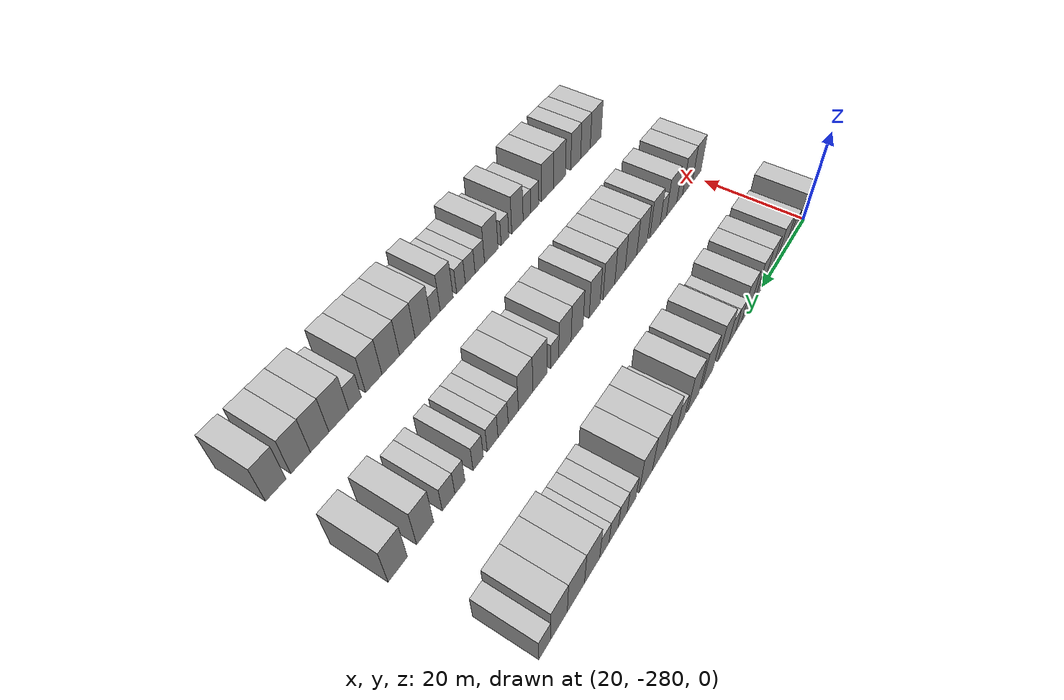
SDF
<sdf version="1.6">
 <world name="default">
  <model name="building_22">
   <static>1</static>
   <pose>25.0000 -278.3851 0 0.000000 0.000000 0.000000</pose>
   <link name="link">
    <pose>0 0 4.50 0 0 0</pose>
    <collision name="collision"><geometry><box><size>10.0000 4.3049 9.0000</size></box></geometry></collision>
    <visual name="visual">
     <cast_shadows>0</cast_shadows>
     <geometry><box><size>10.0000 4.3049 9.0000</size></box></geometry>
     <material>
      <script>
       <uri>model://HANNAS_wall/materials/scripts</uri>
       <uri>model://HANNAS_wall/materials/textures</uri>
       <name>vrc/HANNAS_wall</name>
      </script>
     </material>
    </visual>
   </link>
  </model>
  <model name="building_23">
   <static>1</static>
   <pose>25.0000 -273.7490 0 0.000000 0.000000 0.000000</pose>
   <link name="link">
    <pose>0 0 3.00 0 0 0</pose>
    <collision name="collision"><geometry><box><size>10.0000 2.9674 6.0000</size></box></geometry></collision>
    <visual name="visual">
     <cast_shadows>0</cast_shadows>
     <geometry><box><size>10.0000 2.9674 6.0000</size></box></geometry>
     <material>
      <script>
       <uri>model://HANNAS_wall/materials/scripts</uri>
       <uri>model://HANNAS_wall/materials/textures</uri>
       <name>vrc/HANNAS_wall</name>
      </script>
     </material>
    </visual>
   </link>
  </model>
  <model name="building_24">
   <static>1</static>
   <pose>25.0000 -268.0605 0 0.000000 0.000000 0.000000</pose>
   <link name="link">
    <pose>0 0 4.50 0 0 0</pose>
    <collision name="collision"><geometry><box><size>10.0000 4.4095 9.0000</size></box></geometry></collision>
    <visual name="visual">
     <cast_shadows>0</cast_shadows>
     <geometry><box><size>10.0000 4.4095 9.0000</size></box></geometry>
     <material>
      <script>
       <uri>model://HANNAS_wall/materials/scripts</uri>
       <uri>model://HANNAS_wall/materials/textures</uri>
       <name>vrc/HANNAS_wall</name>
      </script>
     </material>
    </visual>
   </link>
  </model>
  <model name="building_25">
   <static>1</static>
   <pose>25.0000 -262.0357 0 0.000000 0.000000 0.000000</pose>
   <link name="link">
    <pose>0 0 4.50 0 0 0</pose>
    <collision name="collision"><geometry><box><size>10.0000 3.6402 9.0000</size></box></geometry></collision>
    <visual name="visual">
     <cast_shadows>0</cast_shadows>
     <geometry><box><size>10.0000 3.6402 9.0000</size></box></geometry>
     <material>
      <script>
       <uri>model://HANNAS_wall/materials/scripts</uri>
       <uri>model://HANNAS_wall/materials/textures</uri>
       <name>vrc/HANNAS_wall</name>
      </script>
     </material>
    </visual>
   </link>
  </model>
  <model name="building_26">
   <static>1</static>
   <pose>25.0000 -258.3685 0 0.000000 0.000000 0.000000</pose>
   <link name="link">
    <pose>0 0 4.50 0 0 0</pose>
    <collision name="collision"><geometry><box><size>10.0000 3.6942 9.0000</size></box></geometry></collision>
    <visual name="visual">
     <cast_shadows>0</cast_shadows>
     <geometry><box><size>10.0000 3.6942 9.0000</size></box></geometry>
     <material>
      <script>
       <uri>model://HANNAS_wall/materials/scripts</uri>
       <uri>model://HANNAS_wall/materials/textures</uri>
       <name>vrc/HANNAS_wall</name>
      </script>
     </material>
    </visual>
   </link>
  </model>
  <model name="building_27">
   <static>1</static>
   <pose>25.0000 -252.5782 0 0.000000 0.000000 0.000000</pose>
   <link name="link">
    <pose>0 0 4.50 0 0 0</pose>
    <collision name="collision"><geometry><box><size>10.0000 3.8863 9.0000</size></box></geometry></collision>
    <visual name="visual">
     <cast_shadows>0</cast_shadows>
     <geometry><box><size>10.0000 3.8863 9.0000</size></box></geometry>
     <material>
      <script>
       <uri>model://HANNAS_wall/materials/scripts</uri>
       <uri>model://HANNAS_wall/materials/textures</uri>
       <name>vrc/HANNAS_wall</name>
      </script>
     </material>
    </visual>
   </link>
  </model>
  <model name="building_28">
   <static>1</static>
   <pose>25.0000 -249.3838 0 0.000000 0.000000 0.000000</pose>
   <link name="link">
    <pose>0 0 3.00 0 0 0</pose>
    <collision name="collision"><geometry><box><size>10.0000 2.5026 6.0000</size></box></geometry></collision>
    <visual name="visual">
     <cast_shadows>0</cast_shadows>
     <geometry><box><size>10.0000 2.5026 6.0000</size></box></geometry>
     <material>
      <script>
       <uri>model://HANNAS_wall/materials/scripts</uri>
       <uri>model://HANNAS_wall/materials/textures</uri>
       <name>vrc/HANNAS_wall</name>
      </script>
     </material>
    </visual>
   </link>
  </model>
  <model name="building_29">
   <static>1</static>
   <pose>25.0000 -246.7000 0 0.000000 0.000000 0.000000</pose>
   <link name="link">
    <pose>0 0 3.00 0 0 0</pose>
    <collision name="collision"><geometry><box><size>10.0000 2.8650 6.0000</size></box></geometry></collision>
    <visual name="visual">
     <cast_shadows>0</cast_shadows>
     <geometry><box><size>10.0000 2.8650 6.0000</size></box></geometry>
     <material>
      <script>
       <uri>model://HANNAS_wall/materials/scripts</uri>
       <uri>model://HANNAS_wall/materials/textures</uri>
       <name>vrc/HANNAS_wall</name>
      </script>
     </material>
    </visual>
   </link>
  </model>
  <model name="building_30">
   <static>1</static>
   <pose>25.0000 -243.2070 0 0.000000 0.000000 0.000000</pose>
   <link name="link">
    <pose>0 0 4.50 0 0 0</pose>
    <collision name="collision"><geometry><box><size>10.0000 4.1211 9.0000</size></box></geometry></collision>
    <visual name="visual">
     <cast_shadows>0</cast_shadows>
     <geometry><box><size>10.0000 4.1211 9.0000</size></box></geometry>
     <material>
      <script>
       <uri>model://HANNAS_wall/materials/scripts</uri>
       <uri>model://HANNAS_wall/materials/textures</uri>
       <name>vrc/HANNAS_wall</name>
      </script>
     </material>
    </visual>
   </link>
  </model>
  <model name="building_31">
   <static>1</static>
   <pose>25.0000 -237.0426 0 0.000000 0.000000 0.000000</pose>
   <link name="link">
    <pose>0 0 4.50 0 0 0</pose>
    <collision name="collision"><geometry><box><size>10.0000 4.2076 9.0000</size></box></geometry></collision>
    <visual name="visual">
     <cast_shadows>0</cast_shadows>
     <geometry><box><size>10.0000 4.2076 9.0000</size></box></geometry>
     <material>
      <script>
       <uri>model://HANNAS_wall/materials/scripts</uri>
       <uri>model://HANNAS_wall/materials/textures</uri>
       <name>vrc/HANNAS_wall</name>
      </script>
     </material>
    </visual>
   </link>
  </model>
  <model name="building_32">
   <static>1</static>
   <pose>25.0000 -231.9022 0 0.000000 0.000000 0.000000</pose>
   <link name="link">
    <pose>0 0 4.50 0 0 0</pose>
    <collision name="collision"><geometry><box><size>10.0000 4.0731 9.0000</size></box></geometry></collision>
    <visual name="visual">
     <cast_shadows>0</cast_shadows>
     <geometry><box><size>10.0000 4.0731 9.0000</size></box></geometry>
     <material>
      <script>
       <uri>model://HANNAS_wall/materials/scripts</uri>
       <uri>model://HANNAS_wall/materials/textures</uri>
       <name>vrc/HANNAS_wall</name>
      </script>
     </material>
    </visual>
   </link>
  </model>
  <model name="building_33">
   <static>1</static>
   <pose>25.0000 -227.5604 0 0.000000 0.000000 0.000000</pose>
   <link name="link">
    <pose>0 0 3.00 0 0 0</pose>
    <collision name="collision"><geometry><box><size>10.0000 2.6106 6.0000</size></box></geometry></collision>
    <visual name="visual">
     <cast_shadows>0</cast_shadows>
     <geometry><box><size>10.0000 2.6106 6.0000</size></box></geometry>
     <material>
      <script>
       <uri>model://HANNAS_wall/materials/scripts</uri>
       <uri>model://HANNAS_wall/materials/textures</uri>
       <name>vrc/HANNAS_wall</name>
      </script>
     </material>
    </visual>
   </link>
  </model>
  <model name="building_34">
   <static>1</static>
   <pose>25.0000 -224.3440 0 0.000000 0.000000 0.000000</pose>
   <link name="link">
    <pose>0 0 4.50 0 0 0</pose>
    <collision name="collision"><geometry><box><size>10.0000 3.8222 9.0000</size></box></geometry></collision>
    <visual name="visual">
     <cast_shadows>0</cast_shadows>
     <geometry><box><size>10.0000 3.8222 9.0000</size></box></geometry>
     <material>
      <script>
       <uri>model://HANNAS_wall/materials/scripts</uri>
       <uri>model://HANNAS_wall/materials/textures</uri>
       <name>vrc/HANNAS_wall</name>
      </script>
     </material>
    </visual>
   </link>
  </model>
  <model name="building_35">
   <static>1</static>
   <pose>25.0000 -220.3021 0 0.000000 0.000000 0.000000</pose>
   <link name="link">
    <pose>0 0 4.50 0 0 0</pose>
    <collision name="collision"><geometry><box><size>10.0000 4.2617 9.0000</size></box></geometry></collision>
    <visual name="visual">
     <cast_shadows>0</cast_shadows>
     <geometry><box><size>10.0000 4.2617 9.0000</size></box></geometry>
     <material>
      <script>
       <uri>model://HANNAS_wall/materials/scripts</uri>
       <uri>model://HANNAS_wall/materials/textures</uri>
       <name>vrc/HANNAS_wall</name>
      </script>
     </material>
    </visual>
   </link>
  </model>
  <model name="building_36">
   <static>1</static>
   <pose>25.0000 -216.1199 0 0.000000 0.000000 0.000000</pose>
   <link name="link">
    <pose>0 0 4.50 0 0 0</pose>
    <collision name="collision"><geometry><box><size>10.0000 4.1026 9.0000</size></box></geometry></collision>
    <visual name="visual">
     <cast_shadows>0</cast_shadows>
     <geometry><box><size>10.0000 4.1026 9.0000</size></box></geometry>
     <material>
      <script>
       <uri>model://HANNAS_wall/materials/scripts</uri>
       <uri>model://HANNAS_wall/materials/textures</uri>
       <name>vrc/HANNAS_wall</name>
      </script>
     </material>
    </visual>
   </link>
  </model>
  <model name="building_37">
   <static>1</static>
   <pose>25.0000 -211.7622 0 0.000000 0.000000 0.000000</pose>
   <link name="link">
    <pose>0 0 3.00 0 0 0</pose>
    <collision name="collision"><geometry><box><size>10.0000 2.6128 6.0000</size></box></geometry></collision>
    <visual name="visual">
     <cast_shadows>0</cast_shadows>
     <geometry><box><size>10.0000 2.6128 6.0000</size></box></geometry>
     <material>
      <script>
       <uri>model://HANNAS_wall/materials/scripts</uri>
       <uri>model://HANNAS_wall/materials/textures</uri>
       <name>vrc/HANNAS_wall</name>
      </script>
     </material>
    </visual>
   </link>
  </model>
  <model name="building_38">
   <static>1</static>
   <pose>25.0000 -209.1768 0 0.000000 0.000000 0.000000</pose>
   <link name="link">
    <pose>0 0 3.00 0 0 0</pose>
    <collision name="collision"><geometry><box><size>10.0000 2.5580 6.0000</size></box></geometry></collision>
    <visual name="visual">
     <cast_shadows>0</cast_shadows>
     <geometry><box><size>10.0000 2.5580 6.0000</size></box></geometry>
     <material>
      <script>
       <uri>model://HANNAS_wall/materials/scripts</uri>
       <uri>model://HANNAS_wall/materials/textures</uri>
       <name>vrc/HANNAS_wall</name>
      </script>
     </material>
    </visual>
   </link>
  </model>
  <model name="building_39">
   <static>1</static>
   <pose>25.0000 -206.5880 0 0.000000 0.000000 0.000000</pose>
   <link name="link">
    <pose>0 0 3.00 0 0 0</pose>
    <collision name="collision"><geometry><box><size>10.0000 2.6196 6.0000</size></box></geometry></collision>
    <visual name="visual">
     <cast_shadows>0</cast_shadows>
     <geometry><box><size>10.0000 2.6196 6.0000</size></box></geometry>
     <material>
      <script>
       <uri>model://HANNAS_wall/materials/scripts</uri>
       <uri>model://HANNAS_wall/materials/textures</uri>
       <name>vrc/HANNAS_wall</name>
      </script>
     </material>
    </visual>
   </link>
  </model>
  <model name="building_40">
   <static>1</static>
   <pose>25.0000 -203.9817 0 0.000000 0.000000 0.000000</pose>
   <link name="link">
    <pose>0 0 3.00 0 0 0</pose>
    <collision name="collision"><geometry><box><size>10.0000 2.5929 6.0000</size></box></geometry></collision>
    <visual name="visual">
     <cast_shadows>0</cast_shadows>
     <geometry><box><size>10.0000 2.5929 6.0000</size></box></geometry>
     <material>
      <script>
       <uri>model://HANNAS_wall/materials/scripts</uri>
       <uri>model://HANNAS_wall/materials/textures</uri>
       <name>vrc/HANNAS_wall</name>
      </script>
     </material>
    </visual>
   </link>
  </model>
  <model name="building_41">
   <static>1</static>
   <pose>25.0000 -200.6774 0 0.000000 0.000000 0.000000</pose>
   <link name="link">
    <pose>0 0 4.50 0 0 0</pose>
    <collision name="collision"><geometry><box><size>10.0000 4.0157 9.0000</size></box></geometry></collision>
    <visual name="visual">
     <cast_shadows>0</cast_shadows>
     <geometry><box><size>10.0000 4.0157 9.0000</size></box></geometry>
     <material>
      <script>
       <uri>model://HANNAS_wall/materials/scripts</uri>
       <uri>model://HANNAS_wall/materials/textures</uri>
       <name>vrc/HANNAS_wall</name>
      </script>
     </material>
    </visual>
   </link>
  </model>
  <model name="building_42">
   <static>1</static>
   <pose>25.0000 -196.4793 0 0.000000 0.000000 0.000000</pose>
   <link name="link">
    <pose>0 0 4.50 0 0 0</pose>
    <collision name="collision"><geometry><box><size>10.0000 4.3804 9.0000</size></box></geometry></collision>
    <visual name="visual">
     <cast_shadows>0</cast_shadows>
     <geometry><box><size>10.0000 4.3804 9.0000</size></box></geometry>
     <material>
      <script>
       <uri>model://HANNAS_wall/materials/scripts</uri>
       <uri>model://HANNAS_wall/materials/textures</uri>
       <name>vrc/HANNAS_wall</name>
      </script>
     </material>
    </visual>
   </link>
  </model>
  <model name="building_43">
   <static>1</static>
   <pose>25.0000 -192.2540 0 0.000000 0.000000 0.000000</pose>
   <link name="link">
    <pose>0 0 4.50 0 0 0</pose>
    <collision name="collision"><geometry><box><size>10.0000 4.0702 9.0000</size></box></geometry></collision>
    <visual name="visual">
     <cast_shadows>0</cast_shadows>
     <geometry><box><size>10.0000 4.0702 9.0000</size></box></geometry>
     <material>
      <script>
       <uri>model://HANNAS_wall/materials/scripts</uri>
       <uri>model://HANNAS_wall/materials/textures</uri>
       <name>vrc/HANNAS_wall</name>
      </script>
     </material>
    </visual>
   </link>
  </model>
  <model name="building_44">
   <static>1</static>
   <pose>25.0000 -188.8417 0 0.000000 0.000000 0.000000</pose>
   <link name="link">
    <pose>0 0 3.00 0 0 0</pose>
    <collision name="collision"><geometry><box><size>10.0000 2.7544 6.0000</size></box></geometry></collision>
    <visual name="visual">
     <cast_shadows>0</cast_shadows>
     <geometry><box><size>10.0000 2.7544 6.0000</size></box></geometry>
     <material>
      <script>
       <uri>model://HANNAS_wall/materials/scripts</uri>
       <uri>model://HANNAS_wall/materials/textures</uri>
       <name>vrc/HANNAS_wall</name>
      </script>
     </material>
    </visual>
   </link>
  </model>
  <model name="building_206">
   <static>1</static>
   <pose>47.0000 -280.2766 0 0.000000 0.000000 0.000000</pose>
   <link name="link">
    <pose>0 0 4.50 0 0 0</pose>
    <collision name="collision"><geometry><box><size>10.0000 3.9638 9.0000</size></box></geometry></collision>
    <visual name="visual">
     <cast_shadows>0</cast_shadows>
     <geometry><box><size>10.0000 3.9638 9.0000</size></box></geometry>
     <material>
      <script>
       <uri>model://HANNAS_wall/materials/scripts</uri>
       <uri>model://HANNAS_wall/materials/textures</uri>
       <name>vrc/HANNAS_wall</name>
      </script>
     </material>
    </visual>
   </link>
  </model>
  <model name="building_207">
   <static>1</static>
   <pose>47.0000 -276.1164 0 0.000000 0.000000 0.000000</pose>
   <link name="link">
    <pose>0 0 4.50 0 0 0</pose>
    <collision name="collision"><geometry><box><size>10.0000 4.3565 9.0000</size></box></geometry></collision>
    <visual name="visual">
     <cast_shadows>0</cast_shadows>
     <geometry><box><size>10.0000 4.3565 9.0000</size></box></geometry>
     <material>
      <script>
       <uri>model://HANNAS_wall/materials/scripts</uri>
       <uri>model://HANNAS_wall/materials/textures</uri>
       <name>vrc/HANNAS_wall</name>
      </script>
     </material>
    </visual>
   </link>
  </model>
  <model name="building_208">
   <static>1</static>
   <pose>47.0000 -272.6863 0 0.000000 0.000000 0.000000</pose>
   <link name="link">
    <pose>0 0 3.00 0 0 0</pose>
    <collision name="collision"><geometry><box><size>10.0000 2.5038 6.0000</size></box></geometry></collision>
    <visual name="visual">
     <cast_shadows>0</cast_shadows>
     <geometry><box><size>10.0000 2.5038 6.0000</size></box></geometry>
     <material>
      <script>
       <uri>model://HANNAS_wall/materials/scripts</uri>
       <uri>model://HANNAS_wall/materials/textures</uri>
       <name>vrc/HANNAS_wall</name>
      </script>
     </material>
    </visual>
   </link>
  </model>
  <model name="building_209">
   <static>1</static>
   <pose>47.0000 -269.2116 0 0.000000 0.000000 0.000000</pose>
   <link name="link">
    <pose>0 0 4.50 0 0 0</pose>
    <collision name="collision"><geometry><box><size>10.0000 4.4456 9.0000</size></box></geometry></collision>
    <visual name="visual">
     <cast_shadows>0</cast_shadows>
     <geometry><box><size>10.0000 4.4456 9.0000</size></box></geometry>
     <material>
      <script>
       <uri>model://HANNAS_wall/materials/scripts</uri>
       <uri>model://HANNAS_wall/materials/textures</uri>
       <name>vrc/HANNAS_wall</name>
      </script>
     </material>
    </visual>
   </link>
  </model>
  <model name="building_210">
   <static>1</static>
   <pose>47.0000 -265.7160 0 0.000000 0.000000 0.000000</pose>
   <link name="link">
    <pose>0 0 3.00 0 0 0</pose>
    <collision name="collision"><geometry><box><size>10.0000 2.5457 6.0000</size></box></geometry></collision>
    <visual name="visual">
     <cast_shadows>0</cast_shadows>
     <geometry><box><size>10.0000 2.5457 6.0000</size></box></geometry>
     <material>
      <script>
       <uri>model://HANNAS_wall/materials/scripts</uri>
       <uri>model://HANNAS_wall/materials/textures</uri>
       <name>vrc/HANNAS_wall</name>
      </script>
     </material>
    </visual>
   </link>
  </model>
  <model name="building_211">
   <static>1</static>
   <pose>47.0000 -262.3358 0 0.000000 0.000000 0.000000</pose>
   <link name="link">
    <pose>0 0 4.50 0 0 0</pose>
    <collision name="collision"><geometry><box><size>10.0000 4.2147 9.0000</size></box></geometry></collision>
    <visual name="visual">
     <cast_shadows>0</cast_shadows>
     <geometry><box><size>10.0000 4.2147 9.0000</size></box></geometry>
     <material>
      <script>
       <uri>model://HANNAS_wall/materials/scripts</uri>
       <uri>model://HANNAS_wall/materials/textures</uri>
       <name>vrc/HANNAS_wall</name>
      </script>
     </material>
    </visual>
   </link>
  </model>
  <model name="building_212">
   <static>1</static>
   <pose>47.0000 -257.1667 0 0.000000 0.000000 0.000000</pose>
   <link name="link">
    <pose>0 0 4.50 0 0 0</pose>
    <collision name="collision"><geometry><box><size>10.0000 4.1235 9.0000</size></box></geometry></collision>
    <visual name="visual">
     <cast_shadows>0</cast_shadows>
     <geometry><box><size>10.0000 4.1235 9.0000</size></box></geometry>
     <material>
      <script>
       <uri>model://HANNAS_wall/materials/scripts</uri>
       <uri>model://HANNAS_wall/materials/textures</uri>
       <name>vrc/HANNAS_wall</name>
      </script>
     </material>
    </visual>
   </link>
  </model>
  <model name="building_213">
   <static>1</static>
   <pose>47.0000 -252.9161 0 0.000000 0.000000 0.000000</pose>
   <link name="link">
    <pose>0 0 4.50 0 0 0</pose>
    <collision name="collision"><geometry><box><size>10.0000 4.3776 9.0000</size></box></geometry></collision>
    <visual name="visual">
     <cast_shadows>0</cast_shadows>
     <geometry><box><size>10.0000 4.3776 9.0000</size></box></geometry>
     <material>
      <script>
       <uri>model://HANNAS_wall/materials/scripts</uri>
       <uri>model://HANNAS_wall/materials/textures</uri>
       <name>vrc/HANNAS_wall</name>
      </script>
     </material>
    </visual>
   </link>
  </model>
  <model name="building_214">
   <static>1</static>
   <pose>47.0000 -248.8473 0 0.000000 0.000000 0.000000</pose>
   <link name="link">
    <pose>0 0 4.50 0 0 0</pose>
    <collision name="collision"><geometry><box><size>10.0000 3.7601 9.0000</size></box></geometry></collision>
    <visual name="visual">
     <cast_shadows>0</cast_shadows>
     <geometry><box><size>10.0000 3.7601 9.0000</size></box></geometry>
     <material>
      <script>
       <uri>model://HANNAS_wall/materials/scripts</uri>
       <uri>model://HANNAS_wall/materials/textures</uri>
       <name>vrc/HANNAS_wall</name>
      </script>
     </material>
    </visual>
   </link>
  </model>
  <model name="building_215">
   <static>1</static>
   <pose>47.0000 -244.8909 0 0.000000 0.000000 0.000000</pose>
   <link name="link">
    <pose>0 0 4.50 0 0 0</pose>
    <collision name="collision"><geometry><box><size>10.0000 4.1527 9.0000</size></box></geometry></collision>
    <visual name="visual">
     <cast_shadows>0</cast_shadows>
     <geometry><box><size>10.0000 4.1527 9.0000</size></box></geometry>
     <material>
      <script>
       <uri>model://HANNAS_wall/materials/scripts</uri>
       <uri>model://HANNAS_wall/materials/textures</uri>
       <name>vrc/HANNAS_wall</name>
      </script>
     </material>
    </visual>
   </link>
  </model>
  <model name="building_216">
   <static>1</static>
   <pose>47.0000 -239.9654 0 0.000000 0.000000 0.000000</pose>
   <link name="link">
    <pose>0 0 4.50 0 0 0</pose>
    <collision name="collision"><geometry><box><size>10.0000 3.6983 9.0000</size></box></geometry></collision>
    <visual name="visual">
     <cast_shadows>0</cast_shadows>
     <geometry><box><size>10.0000 3.6983 9.0000</size></box></geometry>
     <material>
      <script>
       <uri>model://HANNAS_wall/materials/scripts</uri>
       <uri>model://HANNAS_wall/materials/textures</uri>
       <name>vrc/HANNAS_wall</name>
      </script>
     </material>
    </visual>
   </link>
  </model>
  <model name="building_217">
   <static>1</static>
   <pose>47.0000 -234.1626 0 0.000000 0.000000 0.000000</pose>
   <link name="link">
    <pose>0 0 4.50 0 0 0</pose>
    <collision name="collision"><geometry><box><size>10.0000 3.9074 9.0000</size></box></geometry></collision>
    <visual name="visual">
     <cast_shadows>0</cast_shadows>
     <geometry><box><size>10.0000 3.9074 9.0000</size></box></geometry>
     <material>
      <script>
       <uri>model://HANNAS_wall/materials/scripts</uri>
       <uri>model://HANNAS_wall/materials/textures</uri>
       <name>vrc/HANNAS_wall</name>
      </script>
     </material>
    </visual>
   </link>
  </model>
  <model name="building_218">
   <static>1</static>
   <pose>47.0000 -230.2607 0 0.000000 0.000000 0.000000</pose>
   <link name="link">
    <pose>0 0 4.50 0 0 0</pose>
    <collision name="collision"><geometry><box><size>10.0000 3.8964 9.0000</size></box></geometry></collision>
    <visual name="visual">
     <cast_shadows>0</cast_shadows>
     <geometry><box><size>10.0000 3.8964 9.0000</size></box></geometry>
     <material>
      <script>
       <uri>model://HANNAS_wall/materials/scripts</uri>
       <uri>model://HANNAS_wall/materials/textures</uri>
       <name>vrc/HANNAS_wall</name>
      </script>
     </material>
    </visual>
   </link>
  </model>
  <model name="building_219">
   <static>1</static>
   <pose>47.0000 -227.0959 0 0.000000 0.000000 0.000000</pose>
   <link name="link">
    <pose>0 0 3.00 0 0 0</pose>
    <collision name="collision"><geometry><box><size>10.0000 2.4331 6.0000</size></box></geometry></collision>
    <visual name="visual">
     <cast_shadows>0</cast_shadows>
     <geometry><box><size>10.0000 2.4331 6.0000</size></box></geometry>
     <material>
      <script>
       <uri>model://HANNAS_wall/materials/scripts</uri>
       <uri>model://HANNAS_wall/materials/textures</uri>
       <name>vrc/HANNAS_wall</name>
      </script>
     </material>
    </visual>
   </link>
  </model>
  <model name="building_220">
   <static>1</static>
   <pose>47.0000 -222.7550 0 0.000000 0.000000 0.000000</pose>
   <link name="link">
    <pose>0 0 4.50 0 0 0</pose>
    <collision name="collision"><geometry><box><size>10.0000 4.2487 9.0000</size></box></geometry></collision>
    <visual name="visual">
     <cast_shadows>0</cast_shadows>
     <geometry><box><size>10.0000 4.2487 9.0000</size></box></geometry>
     <material>
      <script>
       <uri>model://HANNAS_wall/materials/scripts</uri>
       <uri>model://HANNAS_wall/materials/textures</uri>
       <name>vrc/HANNAS_wall</name>
      </script>
     </material>
    </visual>
   </link>
  </model>
  <model name="building_221">
   <static>1</static>
   <pose>47.0000 -218.5696 0 0.000000 0.000000 0.000000</pose>
   <link name="link">
    <pose>0 0 4.50 0 0 0</pose>
    <collision name="collision"><geometry><box><size>10.0000 4.1223 9.0000</size></box></geometry></collision>
    <visual name="visual">
     <cast_shadows>0</cast_shadows>
     <geometry><box><size>10.0000 4.1223 9.0000</size></box></geometry>
     <material>
      <script>
       <uri>model://HANNAS_wall/materials/scripts</uri>
       <uri>model://HANNAS_wall/materials/textures</uri>
       <name>vrc/HANNAS_wall</name>
      </script>
     </material>
    </visual>
   </link>
  </model>
  <model name="building_222">
   <static>1</static>
   <pose>47.0000 -215.1201 0 0.000000 0.000000 0.000000</pose>
   <link name="link">
    <pose>0 0 3.00 0 0 0</pose>
    <collision name="collision"><geometry><box><size>10.0000 2.7766 6.0000</size></box></geometry></collision>
    <visual name="visual">
     <cast_shadows>0</cast_shadows>
     <geometry><box><size>10.0000 2.7766 6.0000</size></box></geometry>
     <material>
      <script>
       <uri>model://HANNAS_wall/materials/scripts</uri>
       <uri>model://HANNAS_wall/materials/textures</uri>
       <name>vrc/HANNAS_wall</name>
      </script>
     </material>
    </visual>
   </link>
  </model>
  <model name="building_223">
   <static>1</static>
   <pose>47.0000 -212.3608 0 0.000000 0.000000 0.000000</pose>
   <link name="link">
    <pose>0 0 3.00 0 0 0</pose>
    <collision name="collision"><geometry><box><size>10.0000 2.7420 6.0000</size></box></geometry></collision>
    <visual name="visual">
     <cast_shadows>0</cast_shadows>
     <geometry><box><size>10.0000 2.7420 6.0000</size></box></geometry>
     <material>
      <script>
       <uri>model://HANNAS_wall/materials/scripts</uri>
       <uri>model://HANNAS_wall/materials/textures</uri>
       <name>vrc/HANNAS_wall</name>
      </script>
     </material>
    </visual>
   </link>
  </model>
  <model name="building_224">
   <static>1</static>
   <pose>47.0000 -209.5794 0 0.000000 0.000000 0.000000</pose>
   <link name="link">
    <pose>0 0 3.00 0 0 0</pose>
    <collision name="collision"><geometry><box><size>10.0000 2.8207 6.0000</size></box></geometry></collision>
    <visual name="visual">
     <cast_shadows>0</cast_shadows>
     <geometry><box><size>10.0000 2.8207 6.0000</size></box></geometry>
     <material>
      <script>
       <uri>model://HANNAS_wall/materials/scripts</uri>
       <uri>model://HANNAS_wall/materials/textures</uri>
       <name>vrc/HANNAS_wall</name>
      </script>
     </material>
    </visual>
   </link>
  </model>
  <model name="building_225">
   <static>1</static>
   <pose>47.0000 -205.8651 0 0.000000 0.000000 0.000000</pose>
   <link name="link">
    <pose>0 0 3.00 0 0 0</pose>
    <collision name="collision"><geometry><box><size>10.0000 2.6078 6.0000</size></box></geometry></collision>
    <visual name="visual">
     <cast_shadows>0</cast_shadows>
     <geometry><box><size>10.0000 2.6078 6.0000</size></box></geometry>
     <material>
      <script>
       <uri>model://HANNAS_wall/materials/scripts</uri>
       <uri>model://HANNAS_wall/materials/textures</uri>
       <name>vrc/HANNAS_wall</name>
      </script>
     </material>
    </visual>
   </link>
  </model>
  <model name="building_226">
   <static>1</static>
   <pose>47.0000 -201.3465 0 0.000000 0.000000 0.000000</pose>
   <link name="link">
    <pose>0 0 3.00 0 0 0</pose>
    <collision name="collision"><geometry><box><size>10.0000 2.4294 6.0000</size></box></geometry></collision>
    <visual name="visual">
     <cast_shadows>0</cast_shadows>
     <geometry><box><size>10.0000 2.4294 6.0000</size></box></geometry>
     <material>
      <script>
       <uri>model://HANNAS_wall/materials/scripts</uri>
       <uri>model://HANNAS_wall/materials/textures</uri>
       <name>vrc/HANNAS_wall</name>
      </script>
     </material>
    </visual>
   </link>
  </model>
  <model name="building_227">
   <static>1</static>
   <pose>47.0000 -198.6419 0 0.000000 0.000000 0.000000</pose>
   <link name="link">
    <pose>0 0 3.00 0 0 0</pose>
    <collision name="collision"><geometry><box><size>10.0000 2.9799 6.0000</size></box></geometry></collision>
    <visual name="visual">
     <cast_shadows>0</cast_shadows>
     <geometry><box><size>10.0000 2.9799 6.0000</size></box></geometry>
     <material>
      <script>
       <uri>model://HANNAS_wall/materials/scripts</uri>
       <uri>model://HANNAS_wall/materials/textures</uri>
       <name>vrc/HANNAS_wall</name>
      </script>
     </material>
    </visual>
   </link>
  </model>
  <model name="building_228">
   <static>1</static>
   <pose>47.0000 -193.2390 0 0.000000 0.000000 0.000000</pose>
   <link name="link">
    <pose>0 0 4.50 0 0 0</pose>
    <collision name="collision"><geometry><box><size>10.0000 3.8260 9.0000</size></box></geometry></collision>
    <visual name="visual">
     <cast_shadows>0</cast_shadows>
     <geometry><box><size>10.0000 3.8260 9.0000</size></box></geometry>
     <material>
      <script>
       <uri>model://HANNAS_wall/materials/scripts</uri>
       <uri>model://HANNAS_wall/materials/textures</uri>
       <name>vrc/HANNAS_wall</name>
      </script>
     </material>
    </visual>
   </link>
  </model>
  <model name="building_229">
   <static>1</static>
   <pose>47.0000 -187.2872 0 0.000000 0.000000 0.000000</pose>
   <link name="link">
    <pose>0 0 4.50 0 0 0</pose>
    <collision name="collision"><geometry><box><size>10.0000 4.0776 9.0000</size></box></geometry></collision>
    <visual name="visual">
     <cast_shadows>0</cast_shadows>
     <geometry><box><size>10.0000 4.0776 9.0000</size></box></geometry>
     <material>
      <script>
       <uri>model://HANNAS_wall/materials/scripts</uri>
       <uri>model://HANNAS_wall/materials/textures</uri>
       <name>vrc/HANNAS_wall</name>
      </script>
     </material>
    </visual>
   </link>
  </model>
  <model name="building_392">
   <static>1</static>
   <pose>69.0000 -278.9861 0 0.000000 0.000000 0.000000</pose>
   <link name="link">
    <pose>0 0 4.50 0 0 0</pose>
    <collision name="collision"><geometry><box><size>10.0000 4.4642 9.0000</size></box></geometry></collision>
    <visual name="visual">
     <cast_shadows>0</cast_shadows>
     <geometry><box><size>10.0000 4.4642 9.0000</size></box></geometry>
     <material>
      <script>
       <uri>model://HANNAS_wall/materials/scripts</uri>
       <uri>model://HANNAS_wall/materials/textures</uri>
       <name>vrc/HANNAS_wall</name>
      </script>
     </material>
    </visual>
   </link>
  </model>
  <model name="building_393">
   <static>1</static>
   <pose>69.0000 -274.8212 0 0.000000 0.000000 0.000000</pose>
   <link name="link">
    <pose>0 0 4.50 0 0 0</pose>
    <collision name="collision"><geometry><box><size>10.0000 3.8657 9.0000</size></box></geometry></collision>
    <visual name="visual">
     <cast_shadows>0</cast_shadows>
     <geometry><box><size>10.0000 3.8657 9.0000</size></box></geometry>
     <material>
      <script>
       <uri>model://HANNAS_wall/materials/scripts</uri>
       <uri>model://HANNAS_wall/materials/textures</uri>
       <name>vrc/HANNAS_wall</name>
      </script>
     </material>
    </visual>
   </link>
  </model>
  <model name="building_394">
   <static>1</static>
   <pose>69.0000 -270.9560 0 0.000000 0.000000 0.000000</pose>
   <link name="link">
    <pose>0 0 4.50 0 0 0</pose>
    <collision name="collision"><geometry><box><size>10.0000 3.8646 9.0000</size></box></geometry></collision>
    <visual name="visual">
     <cast_shadows>0</cast_shadows>
     <geometry><box><size>10.0000 3.8646 9.0000</size></box></geometry>
     <material>
      <script>
       <uri>model://HANNAS_wall/materials/scripts</uri>
       <uri>model://HANNAS_wall/materials/textures</uri>
       <name>vrc/HANNAS_wall</name>
      </script>
     </material>
    </visual>
   </link>
  </model>
  <model name="building_395">
   <static>1</static>
   <pose>69.0000 -264.8116 0 0.000000 0.000000 0.000000</pose>
   <link name="link">
    <pose>0 0 4.50 0 0 0</pose>
    <collision name="collision"><geometry><box><size>10.0000 4.4240 9.0000</size></box></geometry></collision>
    <visual name="visual">
     <cast_shadows>0</cast_shadows>
     <geometry><box><size>10.0000 4.4240 9.0000</size></box></geometry>
     <material>
      <script>
       <uri>model://HANNAS_wall/materials/scripts</uri>
       <uri>model://HANNAS_wall/materials/textures</uri>
       <name>vrc/HANNAS_wall</name>
      </script>
     </material>
    </visual>
   </link>
  </model>
  <model name="building_396">
   <static>1</static>
   <pose>69.0000 -260.4249 0 0.000000 0.000000 0.000000</pose>
   <link name="link">
    <pose>0 0 4.50 0 0 0</pose>
    <collision name="collision"><geometry><box><size>10.0000 4.3494 9.0000</size></box></geometry></collision>
    <visual name="visual">
     <cast_shadows>0</cast_shadows>
     <geometry><box><size>10.0000 4.3494 9.0000</size></box></geometry>
     <material>
      <script>
       <uri>model://HANNAS_wall/materials/scripts</uri>
       <uri>model://HANNAS_wall/materials/textures</uri>
       <name>vrc/HANNAS_wall</name>
      </script>
     </material>
    </visual>
   </link>
  </model>
  <model name="building_397">
   <static>1</static>
   <pose>69.0000 -255.8295 0 0.000000 0.000000 0.000000</pose>
   <link name="link">
    <pose>0 0 3.00 0 0 0</pose>
    <collision name="collision"><geometry><box><size>10.0000 2.8415 6.0000</size></box></geometry></collision>
    <visual name="visual">
     <cast_shadows>0</cast_shadows>
     <geometry><box><size>10.0000 2.8415 6.0000</size></box></geometry>
     <material>
      <script>
       <uri>model://HANNAS_wall/materials/scripts</uri>
       <uri>model://HANNAS_wall/materials/textures</uri>
       <name>vrc/HANNAS_wall</name>
      </script>
     </material>
    </visual>
   </link>
  </model>
  <model name="building_398">
   <static>1</static>
   <pose>69.0000 -253.1058 0 0.000000 0.000000 0.000000</pose>
   <link name="link">
    <pose>0 0 3.00 0 0 0</pose>
    <collision name="collision"><geometry><box><size>10.0000 2.6058 6.0000</size></box></geometry></collision>
    <visual name="visual">
     <cast_shadows>0</cast_shadows>
     <geometry><box><size>10.0000 2.6058 6.0000</size></box></geometry>
     <material>
      <script>
       <uri>model://HANNAS_wall/materials/scripts</uri>
       <uri>model://HANNAS_wall/materials/textures</uri>
       <name>vrc/HANNAS_wall</name>
      </script>
     </material>
    </visual>
   </link>
  </model>
  <model name="building_399">
   <static>1</static>
   <pose>69.0000 -249.8880 0 0.000000 0.000000 0.000000</pose>
   <link name="link">
    <pose>0 0 4.50 0 0 0</pose>
    <collision name="collision"><geometry><box><size>10.0000 3.8299 9.0000</size></box></geometry></collision>
    <visual name="visual">
     <cast_shadows>0</cast_shadows>
     <geometry><box><size>10.0000 3.8299 9.0000</size></box></geometry>
     <material>
      <script>
       <uri>model://HANNAS_wall/materials/scripts</uri>
       <uri>model://HANNAS_wall/materials/textures</uri>
       <name>vrc/HANNAS_wall</name>
      </script>
     </material>
    </visual>
   </link>
  </model>
  <model name="building_400">
   <static>1</static>
   <pose>69.0000 -245.7284 0 0.000000 0.000000 0.000000</pose>
   <link name="link">
    <pose>0 0 3.00 0 0 0</pose>
    <collision name="collision"><geometry><box><size>10.0000 2.4892 6.0000</size></box></geometry></collision>
    <visual name="visual">
     <cast_shadows>0</cast_shadows>
     <geometry><box><size>10.0000 2.4892 6.0000</size></box></geometry>
     <material>
      <script>
       <uri>model://HANNAS_wall/materials/scripts</uri>
       <uri>model://HANNAS_wall/materials/textures</uri>
       <name>vrc/HANNAS_wall</name>
      </script>
     </material>
    </visual>
   </link>
  </model>
  <model name="building_401">
   <static>1</static>
   <pose>69.0000 -241.3520 0 0.000000 0.000000 0.000000</pose>
   <link name="link">
    <pose>0 0 4.50 0 0 0</pose>
    <collision name="collision"><geometry><box><size>10.0000 4.2636 9.0000</size></box></geometry></collision>
    <visual name="visual">
     <cast_shadows>0</cast_shadows>
     <geometry><box><size>10.0000 4.2636 9.0000</size></box></geometry>
     <material>
      <script>
       <uri>model://HANNAS_wall/materials/scripts</uri>
       <uri>model://HANNAS_wall/materials/textures</uri>
       <name>vrc/HANNAS_wall</name>
      </script>
     </material>
    </visual>
   </link>
  </model>
  <model name="building_402">
   <static>1</static>
   <pose>69.0000 -237.7737 0 0.000000 0.000000 0.000000</pose>
   <link name="link">
    <pose>0 0 3.00 0 0 0</pose>
    <collision name="collision"><geometry><box><size>10.0000 2.8931 6.0000</size></box></geometry></collision>
    <visual name="visual">
     <cast_shadows>0</cast_shadows>
     <geometry><box><size>10.0000 2.8931 6.0000</size></box></geometry>
     <material>
      <script>
       <uri>model://HANNAS_wall/materials/scripts</uri>
       <uri>model://HANNAS_wall/materials/textures</uri>
       <name>vrc/HANNAS_wall</name>
      </script>
     </material>
    </visual>
   </link>
  </model>
  <model name="building_403">
   <static>1</static>
   <pose>69.0000 -234.8668 0 0.000000 0.000000 0.000000</pose>
   <link name="link">
    <pose>0 0 3.00 0 0 0</pose>
    <collision name="collision"><geometry><box><size>10.0000 2.9207 6.0000</size></box></geometry></collision>
    <visual name="visual">
     <cast_shadows>0</cast_shadows>
     <geometry><box><size>10.0000 2.9207 6.0000</size></box></geometry>
     <material>
      <script>
       <uri>model://HANNAS_wall/materials/scripts</uri>
       <uri>model://HANNAS_wall/materials/textures</uri>
       <name>vrc/HANNAS_wall</name>
      </script>
     </material>
    </visual>
   </link>
  </model>
  <model name="building_404">
   <static>1</static>
   <pose>69.0000 -232.1155 0 0.000000 0.000000 0.000000</pose>
   <link name="link">
    <pose>0 0 3.00 0 0 0</pose>
    <collision name="collision"><geometry><box><size>10.0000 2.5819 6.0000</size></box></geometry></collision>
    <visual name="visual">
     <cast_shadows>0</cast_shadows>
     <geometry><box><size>10.0000 2.5819 6.0000</size></box></geometry>
     <material>
      <script>
       <uri>model://HANNAS_wall/materials/scripts</uri>
       <uri>model://HANNAS_wall/materials/textures</uri>
       <name>vrc/HANNAS_wall</name>
      </script>
     </material>
    </visual>
   </link>
  </model>
  <model name="building_405">
   <static>1</static>
   <pose>69.0000 -227.9835 0 0.000000 0.000000 0.000000</pose>
   <link name="link">
    <pose>0 0 4.50 0 0 0</pose>
    <collision name="collision"><geometry><box><size>10.0000 3.6820 9.0000</size></box></geometry></collision>
    <visual name="visual">
     <cast_shadows>0</cast_shadows>
     <geometry><box><size>10.0000 3.6820 9.0000</size></box></geometry>
     <material>
      <script>
       <uri>model://HANNAS_wall/materials/scripts</uri>
       <uri>model://HANNAS_wall/materials/textures</uri>
       <name>vrc/HANNAS_wall</name>
      </script>
     </material>
    </visual>
   </link>
  </model>
  <model name="building_406">
   <static>1</static>
   <pose>69.0000 -224.8413 0 0.000000 0.000000 0.000000</pose>
   <link name="link">
    <pose>0 0 3.00 0 0 0</pose>
    <collision name="collision"><geometry><box><size>10.0000 2.6024 6.0000</size></box></geometry></collision>
    <visual name="visual">
     <cast_shadows>0</cast_shadows>
     <geometry><box><size>10.0000 2.6024 6.0000</size></box></geometry>
     <material>
      <script>
       <uri>model://HANNAS_wall/materials/scripts</uri>
       <uri>model://HANNAS_wall/materials/textures</uri>
       <name>vrc/HANNAS_wall</name>
      </script>
     </material>
    </visual>
   </link>
  </model>
  <model name="building_407">
   <static>1</static>
   <pose>69.0000 -221.4212 0 0.000000 0.000000 0.000000</pose>
   <link name="link">
    <pose>0 0 4.50 0 0 0</pose>
    <collision name="collision"><geometry><box><size>10.0000 4.2378 9.0000</size></box></geometry></collision>
    <visual name="visual">
     <cast_shadows>0</cast_shadows>
     <geometry><box><size>10.0000 4.2378 9.0000</size></box></geometry>
     <material>
      <script>
       <uri>model://HANNAS_wall/materials/scripts</uri>
       <uri>model://HANNAS_wall/materials/textures</uri>
       <name>vrc/HANNAS_wall</name>
      </script>
     </material>
    </visual>
   </link>
  </model>
  <model name="building_408">
   <static>1</static>
   <pose>69.0000 -217.2643 0 0.000000 0.000000 0.000000</pose>
   <link name="link">
    <pose>0 0 4.50 0 0 0</pose>
    <collision name="collision"><geometry><box><size>10.0000 4.0760 9.0000</size></box></geometry></collision>
    <visual name="visual">
     <cast_shadows>0</cast_shadows>
     <geometry><box><size>10.0000 4.0760 9.0000</size></box></geometry>
     <material>
      <script>
       <uri>model://HANNAS_wall/materials/scripts</uri>
       <uri>model://HANNAS_wall/materials/textures</uri>
       <name>vrc/HANNAS_wall</name>
      </script>
     </material>
    </visual>
   </link>
  </model>
  <model name="building_409">
   <static>1</static>
   <pose>69.0000 -213.0142 0 0.000000 0.000000 0.000000</pose>
   <link name="link">
    <pose>0 0 4.50 0 0 0</pose>
    <collision name="collision"><geometry><box><size>10.0000 4.4244 9.0000</size></box></geometry></collision>
    <visual name="visual">
     <cast_shadows>0</cast_shadows>
     <geometry><box><size>10.0000 4.4244 9.0000</size></box></geometry>
     <material>
      <script>
       <uri>model://HANNAS_wall/materials/scripts</uri>
       <uri>model://HANNAS_wall/materials/textures</uri>
       <name>vrc/HANNAS_wall</name>
      </script>
     </material>
    </visual>
   </link>
  </model>
  <model name="building_410">
   <static>1</static>
   <pose>69.0000 -208.8081 0 0.000000 0.000000 0.000000</pose>
   <link name="link">
    <pose>0 0 4.50 0 0 0</pose>
    <collision name="collision"><geometry><box><size>10.0000 3.9877 9.0000</size></box></geometry></collision>
    <visual name="visual">
     <cast_shadows>0</cast_shadows>
     <geometry><box><size>10.0000 3.9877 9.0000</size></box></geometry>
     <material>
      <script>
       <uri>model://HANNAS_wall/materials/scripts</uri>
       <uri>model://HANNAS_wall/materials/textures</uri>
       <name>vrc/HANNAS_wall</name>
      </script>
     </material>
    </visual>
   </link>
  </model>
  <model name="building_411">
   <static>1</static>
   <pose>69.0000 -204.3432 0 0.000000 0.000000 0.000000</pose>
   <link name="link">
    <pose>0 0 3.00 0 0 0</pose>
    <collision name="collision"><geometry><box><size>10.0000 2.9421 6.0000</size></box></geometry></collision>
    <visual name="visual">
     <cast_shadows>0</cast_shadows>
     <geometry><box><size>10.0000 2.9421 6.0000</size></box></geometry>
     <material>
      <script>
       <uri>model://HANNAS_wall/materials/scripts</uri>
       <uri>model://HANNAS_wall/materials/textures</uri>
       <name>vrc/HANNAS_wall</name>
      </script>
     </material>
    </visual>
   </link>
  </model>
  <model name="building_412">
   <static>1</static>
   <pose>69.0000 -200.6432 0 0.000000 0.000000 0.000000</pose>
   <link name="link">
    <pose>0 0 4.50 0 0 0</pose>
    <collision name="collision"><geometry><box><size>10.0000 4.4578 9.0000</size></box></geometry></collision>
    <visual name="visual">
     <cast_shadows>0</cast_shadows>
     <geometry><box><size>10.0000 4.4578 9.0000</size></box></geometry>
     <material>
      <script>
       <uri>model://HANNAS_wall/materials/scripts</uri>
       <uri>model://HANNAS_wall/materials/textures</uri>
       <name>vrc/HANNAS_wall</name>
      </script>
     </material>
    </visual>
   </link>
  </model>
  <model name="building_413">
   <static>1</static>
   <pose>69.0000 -196.3936 0 0.000000 0.000000 0.000000</pose>
   <link name="link">
    <pose>0 0 4.50 0 0 0</pose>
    <collision name="collision"><geometry><box><size>10.0000 4.0415 9.0000</size></box></geometry></collision>
    <visual name="visual">
     <cast_shadows>0</cast_shadows>
     <geometry><box><size>10.0000 4.0415 9.0000</size></box></geometry>
     <material>
      <script>
       <uri>model://HANNAS_wall/materials/scripts</uri>
       <uri>model://HANNAS_wall/materials/textures</uri>
       <name>vrc/HANNAS_wall</name>
      </script>
     </material>
    </visual>
   </link>
  </model>
  <model name="building_414">
   <static>1</static>
   <pose>69.0000 -192.3267 0 0.000000 0.000000 0.000000</pose>
   <link name="link">
    <pose>0 0 4.50 0 0 0</pose>
    <collision name="collision"><geometry><box><size>10.0000 4.0922 9.0000</size></box></geometry></collision>
    <visual name="visual">
     <cast_shadows>0</cast_shadows>
     <geometry><box><size>10.0000 4.0922 9.0000</size></box></geometry>
     <material>
      <script>
       <uri>model://HANNAS_wall/materials/scripts</uri>
       <uri>model://HANNAS_wall/materials/textures</uri>
       <name>vrc/HANNAS_wall</name>
      </script>
     </material>
    </visual>
   </link>
  </model>
  <model name="building_415">
   <static>1</static>
   <pose>69.0000 -187.2379 0 0.000000 0.000000 0.000000</pose>
   <link name="link">
    <pose>0 0 4.50 0 0 0</pose>
    <collision name="collision"><geometry><box><size>10.0000 4.0854 9.0000</size></box></geometry></collision>
    <visual name="visual">
     <cast_shadows>0</cast_shadows>
     <geometry><box><size>10.0000 4.0854 9.0000</size></box></geometry>
     <material>
      <script>
       <uri>model://HANNAS_wall/materials/scripts</uri>
       <uri>model://HANNAS_wall/materials/textures</uri>
       <name>vrc/HANNAS_wall</name>
      </script>
     </material>
    </visual>
   </link>
  </model>
 </world>
</sdf>
